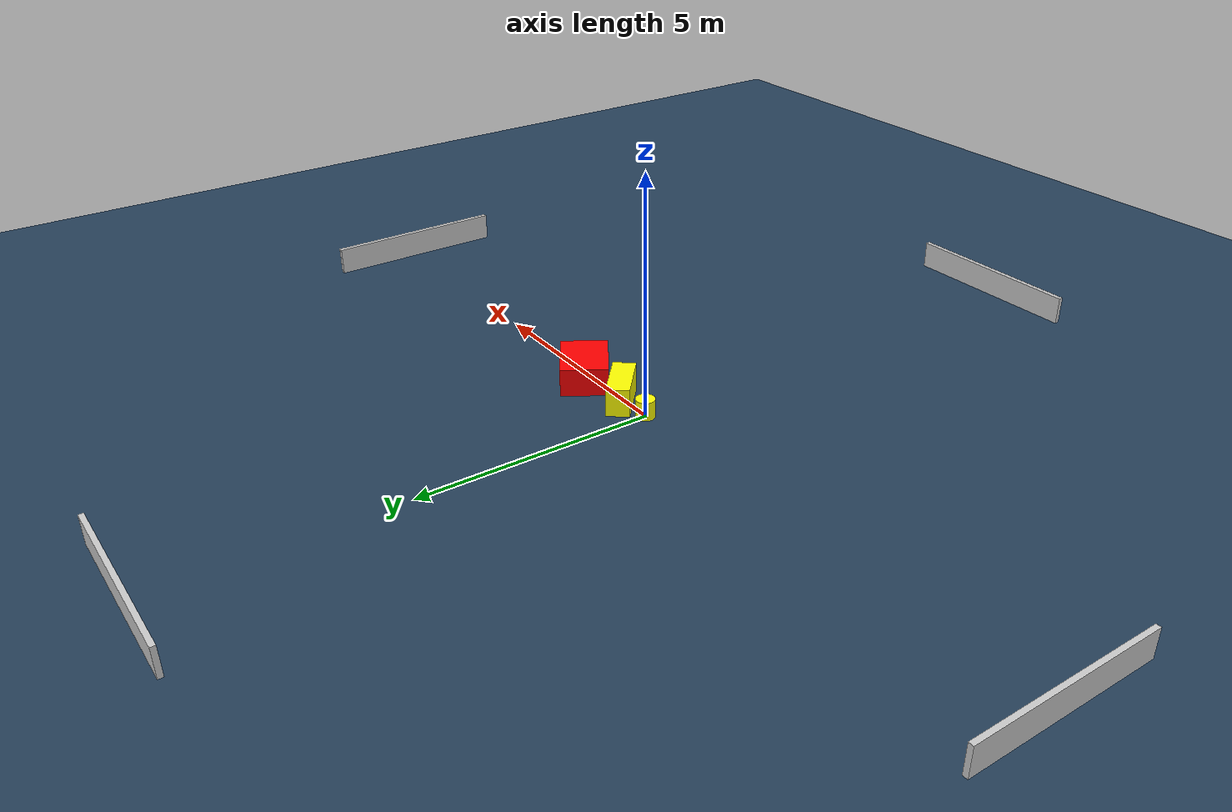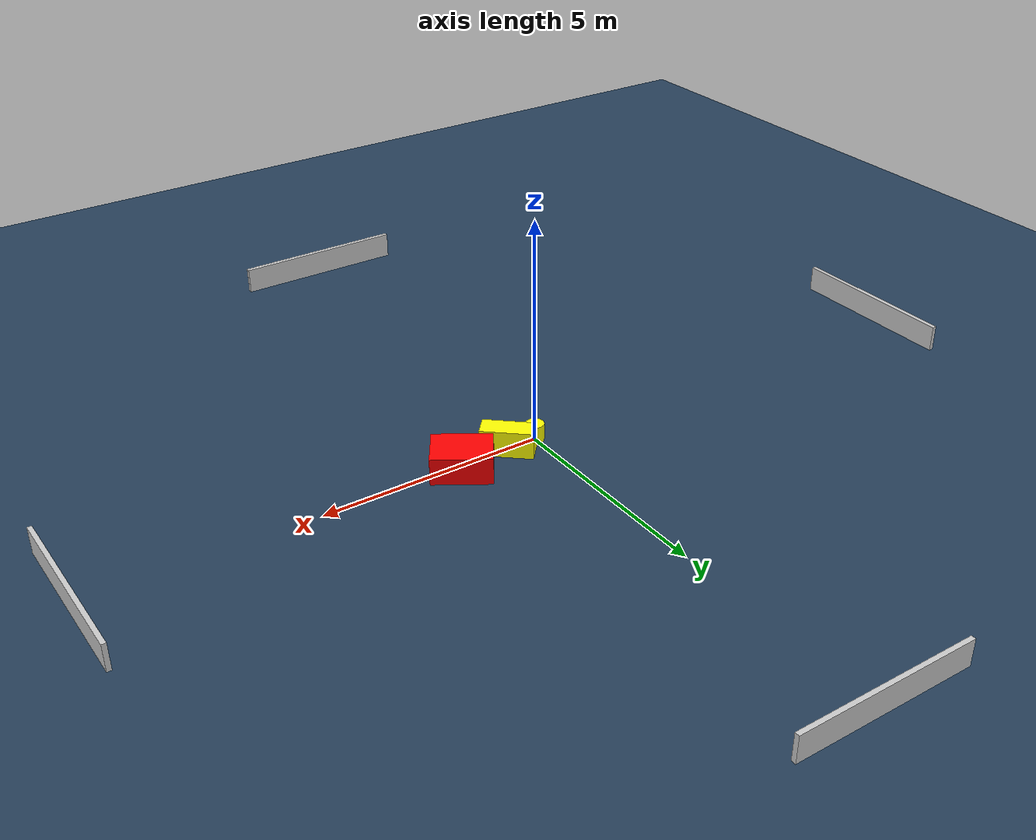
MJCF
<?xml version="1.0" ?>
<mujoco model="generated_environment">
  <option timestep="0.01" integrator="RK4" cone="elliptic"/>
  <default>
    <geom density="1"/>
  </default>
  <asset>
    <texture builtin="gradient" height="3072" name="skybox" rgb1="0.3 0.5 0.7" rgb2="0 0 0" type="skybox" width="512"/>
    <texture builtin="checker" height="300" name="groundplane" rgb1="0.2 0.3 0.4" rgb2="0.1 0.2 0.3" type="2d" width="300"/>
    <material name="groundplane" reflectance="0.2" texrepeat="5 5" texture="groundplane"/>
  </asset>
  <worldbody>
    <light dir="0 0 -1" directional="true" pos="0 0 1.5"/>
    <geom condim="3" friction="0.5 0.005 0.001" material="groundplane" name="floor" pos="0 0 0" size="0 0 0.05" type="plane"/>
    <body name="walls">
      <geom name="wall_1" condim="4" pos="-10.0 0.0 0.3" rgba="0.800000011920929 0.800000011920929 0.800000011920929 1.0" size="0.05 2.0 0.3" type="box"/>
      <geom name="wall_2" condim="4" pos="10.0 0.0 0.3" rgba="0.800000011920929 0.800000011920929 0.800000011920929 1.0" size="0.05 2.0 0.3" type="box"/>
      <geom name="wall_3" condim="4" pos="0.0 -10.0 0.3" rgba="0.800000011920929 0.800000011920929 0.800000011920929 1.0" size="2.0 0.05 0.3" type="box"/>
      <geom name="wall_4" condim="4" pos="0.0 10.0 0.3" rgba="0.800000011920929 0.800000011920929 0.800000011920929 1.0" size="2.0 0.05 0.3" type="box"/>
    </body>
    <body name="robot">
      <joint name="joint_x" type="slide" pos="0 0 0" axis="1 0 0"/>
      <joint name="joint_y" type="slide" pos="0 0 0" axis="0 1 0"/>
      <geom name="robot" type="cylinder" pos="0.0 0.0 0.2" size="0.2 0.2 0.0" mass="5.0" friction="1.0 0.005 0.0001" condim="4" rgba="1.0 1.0 0.0 1.0"/>
    </body>
    <body name="obstacle_1_movable">
      <geom name="obstacle_1_movable" condim="4" pos="0.7312813403496776 0.07288789653391929 0.3" euler="0 0 228.4770613064196" friction="0.0 0.005 0.001" rgba="1.0 1.0 0.0 1.0" size="0.23924019475430358 0.5728087071593893 0.3" type="box" mass="0.1"/>
      <joint type="free"/>
    </body>
    <body name="obstacle_2_static">
      <geom name="obstacle_2_static" condim="4" pos="1.9168112857741617 0.1744876747555859 0.3" euler="0 0 147.1100015737915" friction="0.0 0.005 0.001" rgba="1.0 0.0 0.0 1.0" size="0.6451605967705734 0.4961717927841973 0.3" type="box"/>
    </body>
  </worldbody>
  <actuator>
    <motor name="actuator_x" joint="joint_x" gear="1" ctrlrange="-1 1"/>
    <motor name="actuator_y" joint="joint_y" gear="1" ctrlrange="-1 1"/>
  </actuator>
</mujoco>
